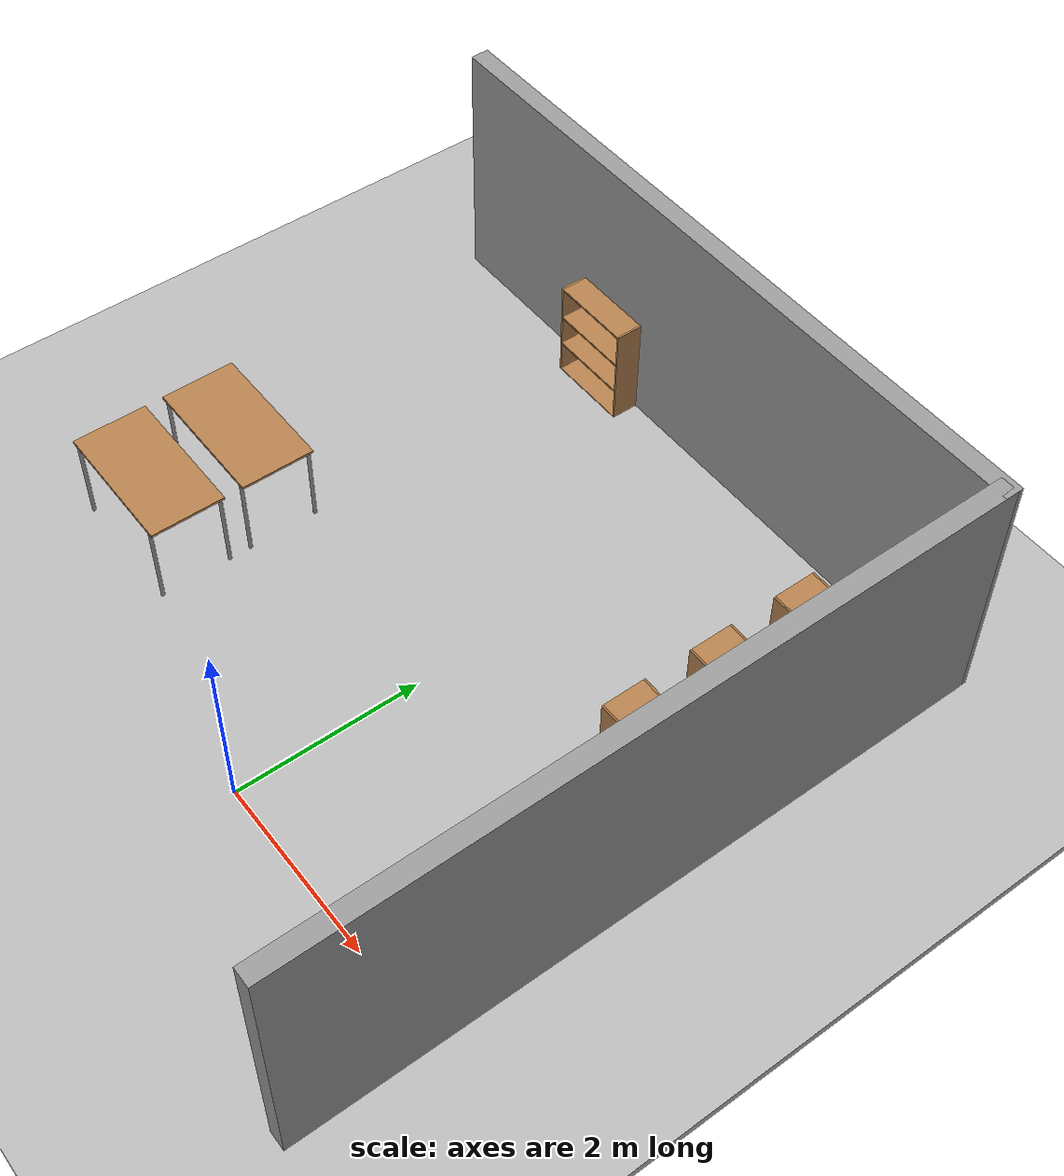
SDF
<sdf version="1.7">
 <world name="default">
  <light name="sun" type="directional">
   <pose>0 0 10 0 -0 0</pose>
   <diffuse>0.8 0.8 0.8 1</diffuse>
   <specular>0.2 0.2 0.2 1</specular>
   <attenuation>
    <range>1000</range>
    <constant>0.9</constant>
    <linear>0.01</linear>
    <quadratic>0.001</quadratic>
   </attenuation>
   <direction>-0.5 0.1 -0.9</direction>
   <spot><inner_angle>0</inner_angle><outer_angle>0</outer_angle><falloff>0</falloff></spot>
  </light>
  <model name="ground_plane">
   <static>1</static>
   <link name="link">
    <collision name="collision">
     <geometry><plane><normal>0 0 1</normal><size>100 100</size></plane></geometry>
     <surface>
      <contact><collide_bitmask>65535</collide_bitmask></contact>
      <friction><ode><mu>100</mu><mu2>50</mu2></ode></friction>
     </surface>
    </collision>
    <visual name="visual">
     <cast_shadows>0</cast_shadows>
     <geometry><plane><normal>0 0 1</normal><size>100 100</size></plane></geometry>
     <material>
      <script><uri>file://media/materials/scripts/gazebo.material</uri><name>Gazebo/Grey</name></script>
     </material>
    </visual>
   </link>
  </model>
  <gravity>0 0 -9.8</gravity>
  <magnetic_field>6e-06 2.3e-05 -4.2e-05</magnetic_field>
  <atmosphere type="adiabatic"/>
  <physics type="ode">
   <max_step_size>0.001</max_step_size>
   <real_time_factor>1</real_time_factor>
   <real_time_update_rate>1000</real_time_update_rate>
  </physics>
  <scene><ambient>0.4 0.4 0.4 1</ambient><background>0.7 0.7 0.7 1</background><shadows>1</shadows></scene>
  <spherical_coordinates>
   <surface_model>EARTH_WGS84</surface_model>
   <latitude_deg>0</latitude_deg>
   <longitude_deg>0</longitude_deg>
   <elevation>0</elevation>
   <heading_deg>0</heading_deg>
  </spherical_coordinates>
  <model name="bookshelf">
   <static>1</static>
   <link name="link">
    <inertial><mass>1</mass></inertial>
    <collision name="back">
     <pose>0 0.005 0.6 0 -0 0</pose>
     <geometry><box><size>0.9 0.01 1.2</size></box></geometry>
    </collision>
    <visual name="visual1">
     <pose>0 0.005 0.6 0 -0 0</pose>
     <geometry><box><size>0.9 0.01 1.2</size></box></geometry>
     <material>
      <script><uri>file://media/materials/scripts/gazebo.material</uri><name>Gazebo/Wood</name></script>
     </material>
    </visual>
    <collision name="left_side">
     <pose>0.45 -0.195 0.6 0 -0 0</pose>
     <geometry><box><size>0.02 0.4 1.2</size></box></geometry>
    </collision>
    <visual name="visual2">
     <pose>0.45 -0.195 0.6 0 -0 0</pose>
     <geometry><box><size>0.02 0.4 1.2</size></box></geometry>
     <material>
      <script><uri>file://media/materials/scripts/gazebo.material</uri><name>Gazebo/Wood</name></script>
     </material>
    </visual>
    <collision name="right_side">
     <pose>-0.45 -0.195 0.6 0 -0 0</pose>
     <geometry><box><size>0.02 0.4 1.2</size></box></geometry>
    </collision>
    <visual name="visual3">
     <pose>-0.45 -0.195 0.6 0 -0 0</pose>
     <geometry><box><size>0.02 0.4 1.2</size></box></geometry>
     <material>
      <script><uri>file://media/materials/scripts/gazebo.material</uri><name>Gazebo/Wood</name></script>
     </material>
    </visual>
    <collision name="bottom">
     <pose>0 -0.195 0.03 0 -0 0</pose>
     <geometry><box><size>0.88 0.4 0.06</size></box></geometry>
    </collision>
    <visual name="visual4">
     <pose>0 -0.195 0.03 0 -0 0</pose>
     <geometry><box><size>0.88 0.4 0.06</size></box></geometry>
     <material>
      <script><uri>file://media/materials/scripts/gazebo.material</uri><name>Gazebo/Wood</name></script>
     </material>
    </visual>
    <collision name="top">
     <pose>0 -0.195 1.19 0 -0 0</pose>
     <geometry><box><size>0.88 0.4 0.02</size></box></geometry>
    </collision>
    <visual name="visual5">
     <pose>0 -0.195 1.19 0 -0 0</pose>
     <geometry><box><size>0.88 0.4 0.02</size></box></geometry>
     <material>
      <script><uri>file://media/materials/scripts/gazebo.material</uri><name>Gazebo/Wood</name></script>
     </material>
    </visual>
    <collision name="low_shelf">
     <pose>0 -0.195 0.43 0 -0 0</pose>
     <geometry><box><size>0.88 0.4 0.02</size></box></geometry>
    </collision>
    <visual name="visual6">
     <pose>0 -0.195 0.43 0 -0 0</pose>
     <geometry><box><size>0.88 0.4 0.02</size></box></geometry>
     <material>
      <script><uri>file://media/materials/scripts/gazebo.material</uri><name>Gazebo/Wood</name></script>
     </material>
    </visual>
    <collision name="high_shelf">
     <pose>0 -0.195 0.8 0 -0 0</pose>
     <geometry><box><size>0.88 0.4 0.02</size></box></geometry>
    </collision>
    <visual name="visual7">
     <pose>0 -0.195 0.8 0 -0 0</pose>
     <geometry><box><size>0.88 0.4 0.02</size></box></geometry>
     <material>
      <script><uri>file://media/materials/scripts/gazebo.material</uri><name>Gazebo/Wood</name></script>
     </material>
    </visual>
   </link>
   <pose>-2 6 0 0 -0 0</pose>
  </model>
  <model name="cabinet">
   <static>1</static>
   <link name="cabinet_bottom_plate">
    <inertial>
     <pose>0 0 -1 0 -0 0</pose>
     <inertia><ixx>2.05</ixx><ixy>0</ixy><ixz>0</ixz><iyy>2.05</iyy><iyz>0</iyz><izz>2.05</izz></inertia>
     <mass>25</mass>
    </inertial>
    <collision name="cabinet_bottom_plate_geom">
     <pose>0 0 0.01 0 -0 0</pose>
     <geometry><box><size>0.45 0.45 0.02</size></box></geometry>
    </collision>
    <visual name="cabinet_bottom_plate_geom_visual">
     <pose>0 0 0.01 0 -0 0</pose>
     <geometry><box><size>0.45 0.45 0.02</size></box></geometry>
     <material>
      <script><uri>file://media/materials/scripts/gazebo.material</uri><name>Gazebo/Wood</name></script>
     </material>
    </visual>
    <collision name="cabinet_bottom_plate_geom_cabinet_back_plate">
     <pose>0.235 0 0.51 0 -0 0</pose>
     <geometry><box><size>0.02 0.45 1.02</size></box></geometry>
    </collision>
    <visual name="cabinet_bottom_plate_geom_cabinet_back_plate_visual">
     <pose>0.235 0 0.51 0 -0 0</pose>
     <geometry><box><size>0.02 0.45 1.02</size></box></geometry>
     <material>
      <script><uri>file://media/materials/scripts/gazebo.material</uri><name>Gazebo/Wood</name></script>
     </material>
    </visual>
    <collision name="cabinet_bottom_plate_geom_cabinet_left_plate">
     <pose>0 0.235 0.51 0 -0 0</pose>
     <geometry><box><size>0.45 0.02 1.02</size></box></geometry>
    </collision>
    <visual name="cabinet_bottom_plate_geom_cabinet_left_plate_visual">
     <pose>0 0.235 0.51 0 -0 0</pose>
     <geometry><box><size>0.45 0.02 1.02</size></box></geometry>
     <material>
      <script><uri>file://media/materials/scripts/gazebo.material</uri><name>Gazebo/Wood</name></script>
     </material>
    </visual>
    <collision name="cabinet_bottom_plate_geom_cabinet_middle_plate">
     <pose>0 0 0.51 0 -0 0</pose>
     <geometry><box><size>0.45 0.45 0.02</size></box></geometry>
    </collision>
    <visual name="cabinet_bottom_plate_geom_cabinet_middle_plate_visual">
     <pose>0 0 0.51 0 -0 0</pose>
     <geometry><box><size>0.45 0.45 0.02</size></box></geometry>
     <material>
      <script><uri>file://media/materials/scripts/gazebo.material</uri><name>Gazebo/Wood</name></script>
     </material>
    </visual>
    <collision name="cabinet_bottom_plate_geom_cabinet_right_plate">
     <pose>0 -0.235 0.51 0 -0 0</pose>
     <geometry><box><size>0.45 0.02 1.02</size></box></geometry>
    </collision>
    <visual name="cabinet_bottom_plate_geom_cabinet_right_plate_visual">
     <pose>0 -0.235 0.51 0 -0 0</pose>
     <geometry><box><size>0.45 0.02 1.02</size></box></geometry>
     <material>
      <script><uri>file://media/materials/scripts/gazebo.material</uri><name>Gazebo/Wood</name></script>
     </material>
    </visual>
    <collision name="cabinet_bottom_plate_geom_cabinet_top_plate">
     <pose>0 0 1.01 0 -0 0</pose>
     <geometry><box><size>0.45 0.45 0.02</size></box></geometry>
    </collision>
    <visual name="cabinet_bottom_plate_geom_cabinet_top_plate_visual">
     <pose>0 0 1.01 0 -0 0</pose>
     <geometry><box><size>0.45 0.45 0.02</size></box></geometry>
     <material>
      <script><uri>file://media/materials/scripts/gazebo.material</uri><name>Gazebo/Wood</name></script>
     </material>
    </visual>
   </link>
   <pose>2 5 0 0 -0 0</pose>
  </model>
  <model name="cabinet_0">
   <static>1</static>
   <link name="cabinet_bottom_plate">
    <inertial>
     <pose>0 0 -1 0 -0 0</pose>
     <inertia><ixx>2.05</ixx><ixy>0</ixy><ixz>0</ixz><iyy>2.05</iyy><iyz>0</iyz><izz>2.05</izz></inertia>
     <mass>25</mass>
    </inertial>
    <collision name="cabinet_bottom_plate_geom">
     <pose>0 0 0.01 0 -0 0</pose>
     <geometry><box><size>0.45 0.45 0.02</size></box></geometry>
    </collision>
    <visual name="cabinet_bottom_plate_geom_visual">
     <pose>0 0 0.01 0 -0 0</pose>
     <geometry><box><size>0.45 0.45 0.02</size></box></geometry>
     <material>
      <script><uri>file://media/materials/scripts/gazebo.material</uri><name>Gazebo/Wood</name></script>
     </material>
    </visual>
    <collision name="cabinet_bottom_plate_geom_cabinet_back_plate">
     <pose>0.235 0 0.51 0 -0 0</pose>
     <geometry><box><size>0.02 0.45 1.02</size></box></geometry>
    </collision>
    <visual name="cabinet_bottom_plate_geom_cabinet_back_plate_visual">
     <pose>0.235 0 0.51 0 -0 0</pose>
     <geometry><box><size>0.02 0.45 1.02</size></box></geometry>
     <material>
      <script><uri>file://media/materials/scripts/gazebo.material</uri><name>Gazebo/Wood</name></script>
     </material>
    </visual>
    <collision name="cabinet_bottom_plate_geom_cabinet_left_plate">
     <pose>0 0.235 0.51 0 -0 0</pose>
     <geometry><box><size>0.45 0.02 1.02</size></box></geometry>
    </collision>
    <visual name="cabinet_bottom_plate_geom_cabinet_left_plate_visual">
     <pose>0 0.235 0.51 0 -0 0</pose>
     <geometry><box><size>0.45 0.02 1.02</size></box></geometry>
     <material>
      <script><uri>file://media/materials/scripts/gazebo.material</uri><name>Gazebo/Wood</name></script>
     </material>
    </visual>
    <collision name="cabinet_bottom_plate_geom_cabinet_middle_plate">
     <pose>0 0 0.51 0 -0 0</pose>
     <geometry><box><size>0.45 0.45 0.02</size></box></geometry>
    </collision>
    <visual name="cabinet_bottom_plate_geom_cabinet_middle_plate_visual">
     <pose>0 0 0.51 0 -0 0</pose>
     <geometry><box><size>0.45 0.45 0.02</size></box></geometry>
     <material>
      <script><uri>file://media/materials/scripts/gazebo.material</uri><name>Gazebo/Wood</name></script>
     </material>
    </visual>
    <collision name="cabinet_bottom_plate_geom_cabinet_right_plate">
     <pose>0 -0.235 0.51 0 -0 0</pose>
     <geometry><box><size>0.45 0.02 1.02</size></box></geometry>
    </collision>
    <visual name="cabinet_bottom_plate_geom_cabinet_right_plate_visual">
     <pose>0 -0.235 0.51 0 -0 0</pose>
     <geometry><box><size>0.45 0.02 1.02</size></box></geometry>
     <material>
      <script><uri>file://media/materials/scripts/gazebo.material</uri><name>Gazebo/Wood</name></script>
     </material>
    </visual>
    <collision name="cabinet_bottom_plate_geom_cabinet_top_plate">
     <pose>0 0 1.01 0 -0 0</pose>
     <geometry><box><size>0.45 0.45 0.02</size></box></geometry>
    </collision>
    <visual name="cabinet_bottom_plate_geom_cabinet_top_plate_visual">
     <pose>0 0 1.01 0 -0 0</pose>
     <geometry><box><size>0.45 0.45 0.02</size></box></geometry>
     <material>
      <script><uri>file://media/materials/scripts/gazebo.material</uri><name>Gazebo/Wood</name></script>
     </material>
    </visual>
   </link>
   <pose>2 4 0 0 -0 0</pose>
  </model>
  <model name="cabinet_1">
   <static>1</static>
   <link name="cabinet_bottom_plate">
    <inertial>
     <pose>0 0 -1 0 -0 0</pose>
     <inertia><ixx>2.05</ixx><ixy>0</ixy><ixz>0</ixz><iyy>2.05</iyy><iyz>0</iyz><izz>2.05</izz></inertia>
     <mass>25</mass>
    </inertial>
    <collision name="cabinet_bottom_plate_geom">
     <pose>0 0 0.01 0 -0 0</pose>
     <geometry><box><size>0.45 0.45 0.02</size></box></geometry>
    </collision>
    <visual name="cabinet_bottom_plate_geom_visual">
     <pose>0 0 0.01 0 -0 0</pose>
     <geometry><box><size>0.45 0.45 0.02</size></box></geometry>
     <material>
      <script><uri>file://media/materials/scripts/gazebo.material</uri><name>Gazebo/Wood</name></script>
     </material>
    </visual>
    <collision name="cabinet_bottom_plate_geom_cabinet_back_plate">
     <pose>0.235 0 0.51 0 -0 0</pose>
     <geometry><box><size>0.02 0.45 1.02</size></box></geometry>
    </collision>
    <visual name="cabinet_bottom_plate_geom_cabinet_back_plate_visual">
     <pose>0.235 0 0.51 0 -0 0</pose>
     <geometry><box><size>0.02 0.45 1.02</size></box></geometry>
     <material>
      <script><uri>file://media/materials/scripts/gazebo.material</uri><name>Gazebo/Wood</name></script>
     </material>
    </visual>
    <collision name="cabinet_bottom_plate_geom_cabinet_left_plate">
     <pose>0 0.235 0.51 0 -0 0</pose>
     <geometry><box><size>0.45 0.02 1.02</size></box></geometry>
    </collision>
    <visual name="cabinet_bottom_plate_geom_cabinet_left_plate_visual">
     <pose>0 0.235 0.51 0 -0 0</pose>
     <geometry><box><size>0.45 0.02 1.02</size></box></geometry>
     <material>
      <script><uri>file://media/materials/scripts/gazebo.material</uri><name>Gazebo/Wood</name></script>
     </material>
    </visual>
    <collision name="cabinet_bottom_plate_geom_cabinet_middle_plate">
     <pose>0 0 0.51 0 -0 0</pose>
     <geometry><box><size>0.45 0.45 0.02</size></box></geometry>
    </collision>
    <visual name="cabinet_bottom_plate_geom_cabinet_middle_plate_visual">
     <pose>0 0 0.51 0 -0 0</pose>
     <geometry><box><size>0.45 0.45 0.02</size></box></geometry>
     <material>
      <script><uri>file://media/materials/scripts/gazebo.material</uri><name>Gazebo/Wood</name></script>
     </material>
    </visual>
    <collision name="cabinet_bottom_plate_geom_cabinet_right_plate">
     <pose>0 -0.235 0.51 0 -0 0</pose>
     <geometry><box><size>0.45 0.02 1.02</size></box></geometry>
    </collision>
    <visual name="cabinet_bottom_plate_geom_cabinet_right_plate_visual">
     <pose>0 -0.235 0.51 0 -0 0</pose>
     <geometry><box><size>0.45 0.02 1.02</size></box></geometry>
     <material>
      <script><uri>file://media/materials/scripts/gazebo.material</uri><name>Gazebo/Wood</name></script>
     </material>
    </visual>
    <collision name="cabinet_bottom_plate_geom_cabinet_top_plate">
     <pose>0 0 1.01 0 -0 0</pose>
     <geometry><box><size>0.45 0.45 0.02</size></box></geometry>
    </collision>
    <visual name="cabinet_bottom_plate_geom_cabinet_top_plate_visual">
     <pose>0 0 1.01 0 -0 0</pose>
     <geometry><box><size>0.45 0.45 0.02</size></box></geometry>
     <material>
      <script><uri>file://media/materials/scripts/gazebo.material</uri><name>Gazebo/Wood</name></script>
     </material>
    </visual>
   </link>
   <pose>2 3 0 0 -0 0</pose>
  </model>
  <model name="grey_wall">
   <static>1</static>
   <link name="link">
    <pose>0 0 1.4 0 -0 0</pose>
    <collision name="collision"><geometry><box><size>7.5 0.2 2.8</size></box></geometry></collision>
    <visual name="visual">
     <cast_shadows>0</cast_shadows>
     <geometry><box><size>7.5 0.2 2.8</size></box></geometry>
     <material>
      <script>
       <uri>model://grey_wall/materials/scripts</uri>
       <uri>model://grey_wall/materials/textures</uri>
       <name>vrc/grey_wall</name>
      </script>
     </material>
    </visual>
   </link>
   <pose>-0.651771 6 0 0 -0 0</pose>
  </model>
  <model name="grey_wall_0">
   <static>1</static>
   <link name="link">
    <pose>0 0 1.4 0 -0 0</pose>
    <collision name="collision"><geometry><box><size>7.5 0.2 2.8</size></box></geometry></collision>
    <visual name="visual">
     <cast_shadows>0</cast_shadows>
     <geometry><box><size>7.5 0.2 2.8</size></box></geometry>
     <material>
      <script>
       <uri>model://grey_wall/materials/scripts</uri>
       <uri>model://grey_wall/materials/textures</uri>
       <name>vrc/grey_wall</name>
      </script>
     </material>
    </visual>
   </link>
   <pose>3 2.29543 0 0 -0 1.5708</pose>
  </model>
  <model name="table">
   <static>1</static>
   <link name="link">
    <collision name="surface">
     <pose>0 0 1 0 -0 0</pose>
     <geometry><box><size>1.5 0.8 0.03</size></box></geometry>
     <surface><friction><ode><mu>0.6</mu><mu2>0.6</mu2></ode></friction></surface>
    </collision>
    <visual name="visual1">
     <pose>0 0 1 0 -0 0</pose>
     <geometry><box><size>1.5 0.8 0.03</size></box></geometry>
     <material>
      <script><uri>file://media/materials/scripts/gazebo.material</uri><name>Gazebo/Wood</name></script>
     </material>
    </visual>
    <collision name="front_left_leg">
     <pose>0.68 0.38 0.5 0 -0 0</pose>
     <geometry><cylinder><radius>0.02</radius><length>1</length></cylinder></geometry>
    </collision>
    <visual name="front_left_leg">
     <pose>0.68 0.38 0.5 0 -0 0</pose>
     <geometry><cylinder><radius>0.02</radius><length>1</length></cylinder></geometry>
     <material>
      <script><uri>file://media/materials/scripts/gazebo.material</uri><name>Gazebo/Grey</name></script>
     </material>
    </visual>
    <collision name="front_right_leg">
     <pose>0.68 -0.38 0.5 0 -0 0</pose>
     <geometry><cylinder><radius>0.02</radius><length>1</length></cylinder></geometry>
    </collision>
    <visual name="front_right_leg">
     <pose>0.68 -0.38 0.5 0 -0 0</pose>
     <geometry><cylinder><radius>0.02</radius><length>1</length></cylinder></geometry>
     <material>
      <script><uri>file://media/materials/scripts/gazebo.material</uri><name>Gazebo/Grey</name></script>
     </material>
    </visual>
    <collision name="back_right_leg">
     <pose>-0.68 -0.38 0.5 0 -0 0</pose>
     <geometry><cylinder><radius>0.02</radius><length>1</length></cylinder></geometry>
    </collision>
    <visual name="back_right_leg">
     <pose>-0.68 -0.38 0.5 0 -0 0</pose>
     <geometry><cylinder><radius>0.02</radius><length>1</length></cylinder></geometry>
     <material>
      <script><uri>file://media/materials/scripts/gazebo.material</uri><name>Gazebo/Grey</name></script>
     </material>
    </visual>
    <collision name="back_left_leg">
     <pose>-0.68 0.38 0.5 0 -0 0</pose>
     <geometry><cylinder><radius>0.02</radius><length>1</length></cylinder></geometry>
    </collision>
    <visual name="back_left_leg">
     <pose>-0.68 0.38 0.5 0 -0 0</pose>
     <geometry><cylinder><radius>0.02</radius><length>1</length></cylinder></geometry>
     <material>
      <script><uri>file://media/materials/scripts/gazebo.material</uri><name>Gazebo/Grey</name></script>
     </material>
    </visual>
   </link>
   <pose>-3 1 0 0 -0 0</pose>
  </model>
  <model name="table_0">
   <static>1</static>
   <link name="link">
    <collision name="surface">
     <pose>0 0 1 0 -0 0</pose>
     <geometry><box><size>1.5 0.8 0.03</size></box></geometry>
     <surface><friction><ode><mu>0.6</mu><mu2>0.6</mu2></ode></friction></surface>
    </collision>
    <visual name="visual1">
     <pose>0 0 1 0 -0 0</pose>
     <geometry><box><size>1.5 0.8 0.03</size></box></geometry>
     <material>
      <script><uri>file://media/materials/scripts/gazebo.material</uri><name>Gazebo/Wood</name></script>
     </material>
    </visual>
    <collision name="front_left_leg">
     <pose>0.68 0.38 0.5 0 -0 0</pose>
     <geometry><cylinder><radius>0.02</radius><length>1</length></cylinder></geometry>
    </collision>
    <visual name="front_left_leg">
     <pose>0.68 0.38 0.5 0 -0 0</pose>
     <geometry><cylinder><radius>0.02</radius><length>1</length></cylinder></geometry>
     <material>
      <script><uri>file://media/materials/scripts/gazebo.material</uri><name>Gazebo/Grey</name></script>
     </material>
    </visual>
    <collision name="front_right_leg">
     <pose>0.68 -0.38 0.5 0 -0 0</pose>
     <geometry><cylinder><radius>0.02</radius><length>1</length></cylinder></geometry>
    </collision>
    <visual name="front_right_leg">
     <pose>0.68 -0.38 0.5 0 -0 0</pose>
     <geometry><cylinder><radius>0.02</radius><length>1</length></cylinder></geometry>
     <material>
      <script><uri>file://media/materials/scripts/gazebo.material</uri><name>Gazebo/Grey</name></script>
     </material>
    </visual>
    <collision name="back_right_leg">
     <pose>-0.68 -0.38 0.5 0 -0 0</pose>
     <geometry><cylinder><radius>0.02</radius><length>1</length></cylinder></geometry>
    </collision>
    <visual name="back_right_leg">
     <pose>-0.68 -0.38 0.5 0 -0 0</pose>
     <geometry><cylinder><radius>0.02</radius><length>1</length></cylinder></geometry>
     <material>
      <script><uri>file://media/materials/scripts/gazebo.material</uri><name>Gazebo/Grey</name></script>
     </material>
    </visual>
    <collision name="back_left_leg">
     <pose>-0.68 0.38 0.5 0 -0 0</pose>
     <geometry><cylinder><radius>0.02</radius><length>1</length></cylinder></geometry>
    </collision>
    <visual name="back_left_leg">
     <pose>-0.68 0.38 0.5 0 -0 0</pose>
     <geometry><cylinder><radius>0.02</radius><length>1</length></cylinder></geometry>
     <material>
      <script><uri>file://media/materials/scripts/gazebo.material</uri><name>Gazebo/Grey</name></script>
     </material>
    </visual>
   </link>
   <pose>-3 2 0 0 -0 0</pose>
  </model>
  <model name="ground_plane_base">
   <static>1</static>
   <link name="link">
    <collision name="collision">
     <geometry><plane><normal>0 0 1</normal><size>100 100</size></plane></geometry>
     <surface><friction><ode><mu>100</mu><mu2>50</mu2></ode></friction></surface>
    </collision>
    <visual name="visual">
     <cast_shadows>0</cast_shadows>
     <geometry><plane><normal>0 0 1</normal><size>100 100</size></plane></geometry>
     <material>
      <script>
       <uri>model://groundplane_base/materials/scripts</uri>
       <uri>model://groundplane_base/materials/textures</uri>
       <name>GroundPlane/Marble</name>
      </script>
     </material>
    </visual>
   </link>
  </model>
 </world>
</sdf>
